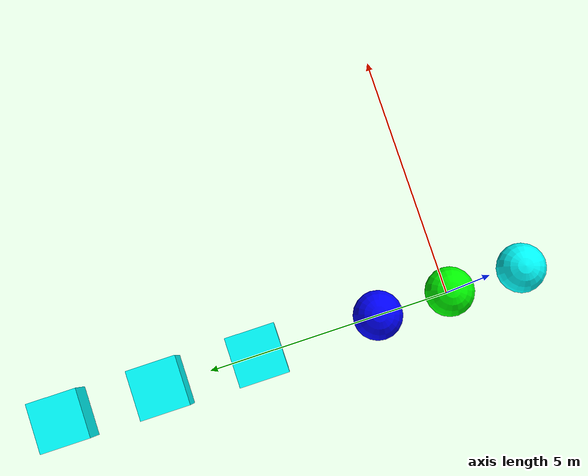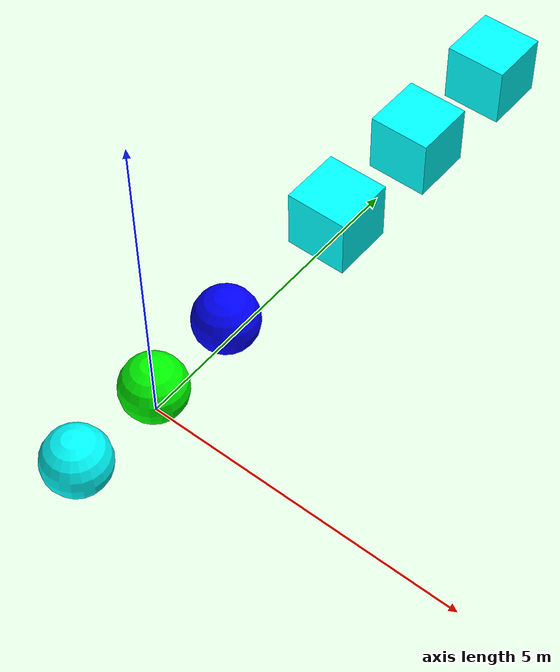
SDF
<?xml version="1.0" ?>
<!--

Demo of fluid added mass SDF parameter.

-->
<sdf version="1.6">
  <world name="fluid_added_mass">
    <plugin
      filename="gz-sim-physics-system"
      name="gz::sim::systems::Physics">
    </plugin>
    <plugin
      filename="gz-sim-scene-broadcaster-system"
      name="gz::sim::systems::SceneBroadcaster">
    </plugin>
    <plugin
      filename="gz-sim-apply-link-wrench-system"
      name="gz::sim::systems::ApplyLinkWrench">

      <persistent>
        <entity_name>sphere_no_added_mass</entity_name>
        <entity_type>model</entity_type>
        <force>1 0 0</force>
      </persistent>

      <persistent>
        <entity_name>sphere_in_water</entity_name>
        <entity_type>model</entity_type>
        <force>1 0 0</force>
      </persistent>

      <persistent>
        <entity_name>sphere_in_air</entity_name>
        <entity_type>model</entity_type>
        <force>1 0 0</force>
      </persistent>

      <persistent>
        <entity_name>box_diagonal</entity_name>
        <entity_type>model</entity_type>
        <force>1 0 0</force>
      </persistent>

      <persistent>
        <entity_name>box_xx_xy_xz</entity_name>
        <entity_type>model</entity_type>
        <force>1 0 0</force>
      </persistent>

      <persistent>
        <entity_name>box_xy</entity_name>
        <entity_type>model</entity_type>
        <force>1 0 0</force>
      </persistent>

    </plugin>

    <gravity>0 0 0</gravity>

    <light type="directional" name="sun">
      <cast_shadows>true</cast_shadows>
      <pose>0 0 10 0 0 0</pose>
      <diffuse>0.8 0.8 0.8 1</diffuse>
      <specular>0.2 0.2 0.2 1</specular>
      <attenuation>
        <range>1000</range>
        <constant>0.9</constant>
        <linear>0.01</linear>
        <quadratic>0.001</quadratic>
      </attenuation>
      <direction>-0.5 0.1 -0.9</direction>
    </light>

    <model name="sphere_no_added_mass">
      <pose>0 0 0.5 0 0 0</pose>
      <link name="link">
        <inertial>
          <inertia>
            <ixx>0.1</ixx>
            <ixy>0</ixy>
            <ixz>0</ixz>
            <iyy>0.1</iyy>
            <iyz>0</iyz>
            <izz>0.1</izz>
          </inertia>
          <mass>1.0</mass>
        </inertial>
        <collision name="collision">
          <geometry>
            <sphere>
              <radius>0.5</radius>
            </sphere>
          </geometry>
        </collision>

        <visual name="visual">
          <geometry>
            <sphere>
              <radius>0.5</radius>
            </sphere>
          </geometry>
          <material>
            <ambient>0 1 0 1</ambient>
            <diffuse>0 1 0 1</diffuse>
            <specular>0 1 0 1</specular>
          </material>
        </visual>
      </link>
    </model>

    <model name="sphere_in_water">
      <pose>0 1.5 0.5 0 0 0</pose>
      <link name="link">
        <inertial>
          <inertia>
            <ixx>0.1</ixx>
            <ixy>0</ixy>
            <ixz>0</ixz>
            <iyy>0.1</iyy>
            <iyz>0</iyz>
            <izz>0.1</izz>
          </inertia>
          <mass>1.0</mass>
          <fluid_added_mass>
            <xx>261.666</xx>
            <yy>261.666</yy>
            <zz>261.666</zz>
          </fluid_added_mass>
        </inertial>
        <collision name="collision">
          <geometry>
            <sphere>
              <radius>0.5</radius>
            </sphere>
          </geometry>
        </collision>

        <visual name="visual">
          <geometry>
            <sphere>
              <radius>0.5</radius>
            </sphere>
          </geometry>
          <material>
            <ambient>0 0 1 1</ambient>
            <diffuse>0 0 1 1</diffuse>
            <specular>0 0 1 1</specular>
          </material>
        </visual>
      </link>
    </model>

    <model name="sphere_in_air">
      <pose>0 -1.5 0.5 0 0 0</pose>
      <link name="link">
        <inertial>
          <inertia>
            <ixx>0.1</ixx>
            <ixy>0</ixy>
            <ixz>0</ixz>
            <iyy>0.1</iyy>
            <iyz>0</iyz>
            <izz>0.1</izz>
          </inertia>
          <mass>1.0</mass>
          <!--
            The values below use 1 kg/m^3 for the fluid density.
          -->
          <fluid_added_mass>
            <xx>0.261666</xx>
            <yy>0.261666</yy>
            <zz>0.261666</zz>
          </fluid_added_mass>
        </inertial>
        <collision name="collision">
          <geometry>
            <sphere>
              <radius>0.5</radius>
            </sphere>
          </geometry>
        </collision>

        <visual name="visual">
          <geometry>
            <sphere>
              <radius>0.5</radius>
            </sphere>
          </geometry>
          <material>
            <ambient>0 1 1 1</ambient>
            <diffuse>0 1 1 1</diffuse>
            <specular>1 0 1 1</specular>
          </material>
        </visual>
      </link>
    </model>

    <model name="box_diagonal">
      <pose>0 4.0 0.5 0 0 0</pose>
      <link name="link">
        <inertial>
          <inertia>
            <ixx>0.1</ixx>
            <ixy>0</ixy>
            <ixz>0</ixz>
            <iyy>0.1</iyy>
            <iyz>0</iyz>
            <izz>0.1</izz>
          </inertia>
          <mass>1.0</mass>
          <fluid_added_mass>
            <xx>0.261666</xx>
            <yy>0.261666</yy>
            <zz>0.261666</zz>
          </fluid_added_mass>
        </inertial>
        <collision name="collision">
          <geometry>
            <box>
              <size>1.0 1.0 1.0</size>
            </box>
          </geometry>
        </collision>

        <visual name="visual">
          <geometry>
            <box>
              <size>1.0 1.0 1.0</size>
            </box>
          </geometry>
          <material>
            <ambient>0 1 1 1</ambient>
            <diffuse>0 1 1 1</diffuse>
            <specular>1 0 1 1</specular>
          </material>
        </visual>
      </link>
    </model>

    <model name="box_xx_xy_xz">
      <pose>0 6.0 0.5 0 0 0</pose>
      <link name="link">
        <inertial>
          <inertia>
            <ixx>0.1</ixx>
            <ixy>0</ixy>
            <ixz>0</ixz>
            <iyy>0.1</iyy>
            <iyz>0</iyz>
            <izz>0.1</izz>
          </inertia>
          <mass>1.0</mass>
          <fluid_added_mass>
            <xx>0.261666</xx>
            <xy>0.261666</xy>
            <xz>0.261666</xz>
          </fluid_added_mass>
        </inertial>
        <collision name="collision">
          <geometry>
            <box>
              <size>1.0 1.0 1.0</size>
            </box>
          </geometry>
        </collision>

        <visual name="visual">
          <geometry>
            <box>
              <size>1.0 1.0 1.0</size>
            </box>
          </geometry>
          <material>
            <ambient>0 1 1 1</ambient>
            <diffuse>0 1 1 1</diffuse>
            <specular>1 0 1 1</specular>
          </material>
        </visual>
      </link>
    </model>

    <model name="box_xy">
      <pose>0 8.0 0.5 0 0 0</pose>
      <link name="link">
        <inertial>
          <inertia>
            <ixx>0.1</ixx>
            <ixy>0</ixy>
            <ixz>0</ixz>
            <iyy>0.1</iyy>
            <iyz>0</iyz>
            <izz>0.1</izz>
          </inertia>
          <mass>1.0</mass>
          <fluid_added_mass>
            <xy>0.261666</xy>
          </fluid_added_mass>
        </inertial>
        <collision name="collision">
          <geometry>
            <box>
              <size>1.0 1.0 1.0</size>
            </box>
          </geometry>
        </collision>

        <visual name="visual">
          <geometry>
            <box>
              <size>1.0 1.0 1.0</size>
            </box>
          </geometry>
          <material>
            <ambient>0 1 1 1</ambient>
            <diffuse>0 1 1 1</diffuse>
            <specular>1 0 1 1</specular>
          </material>
        </visual>
      </link>
    </model>
  </world>
</sdf>
